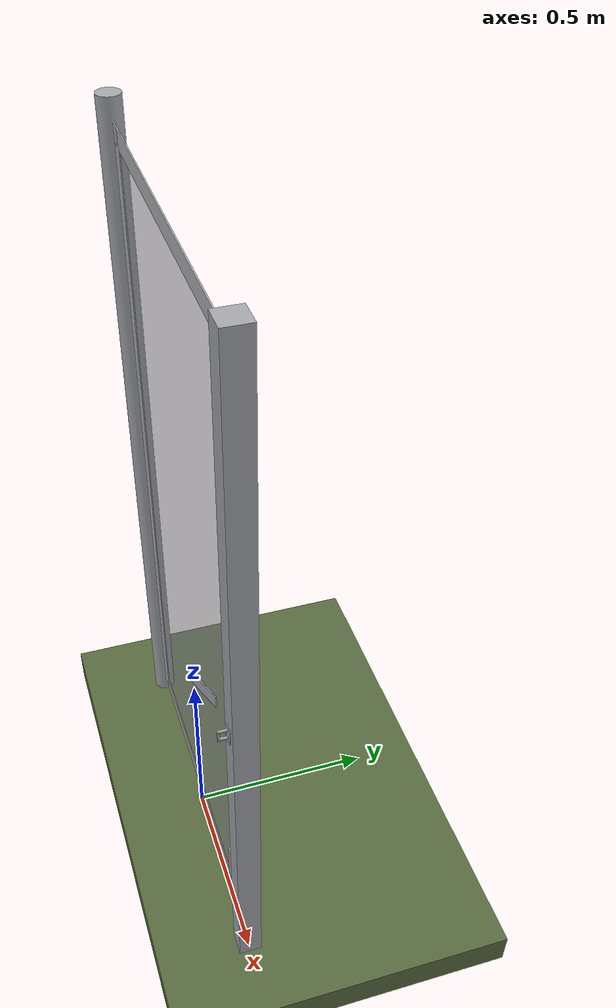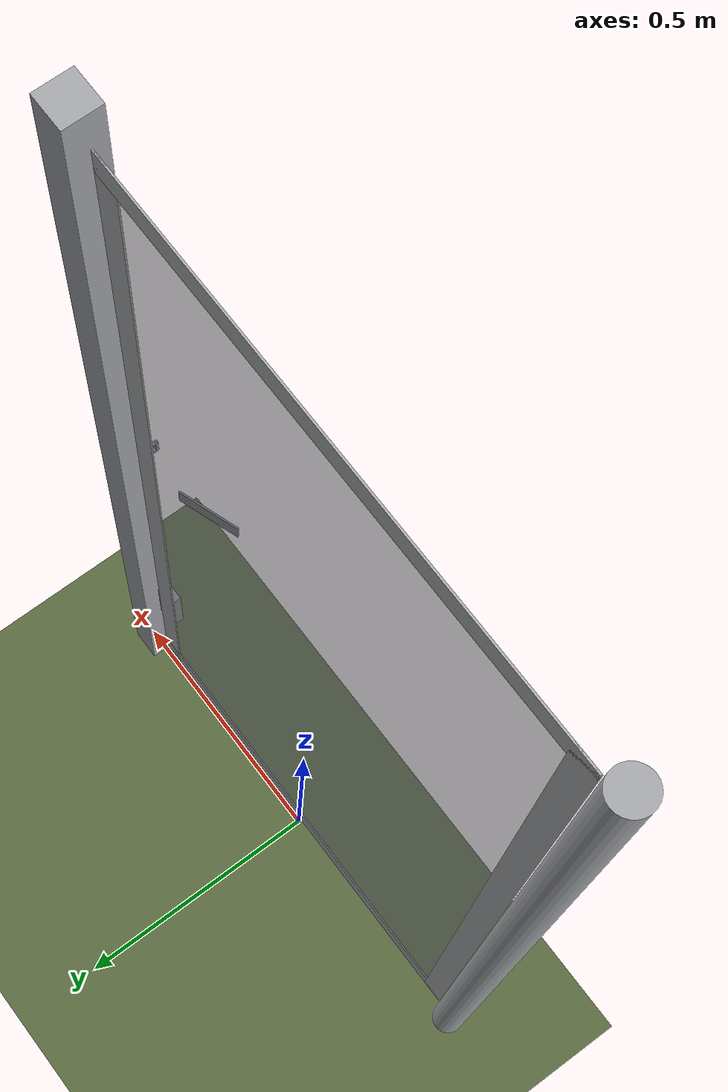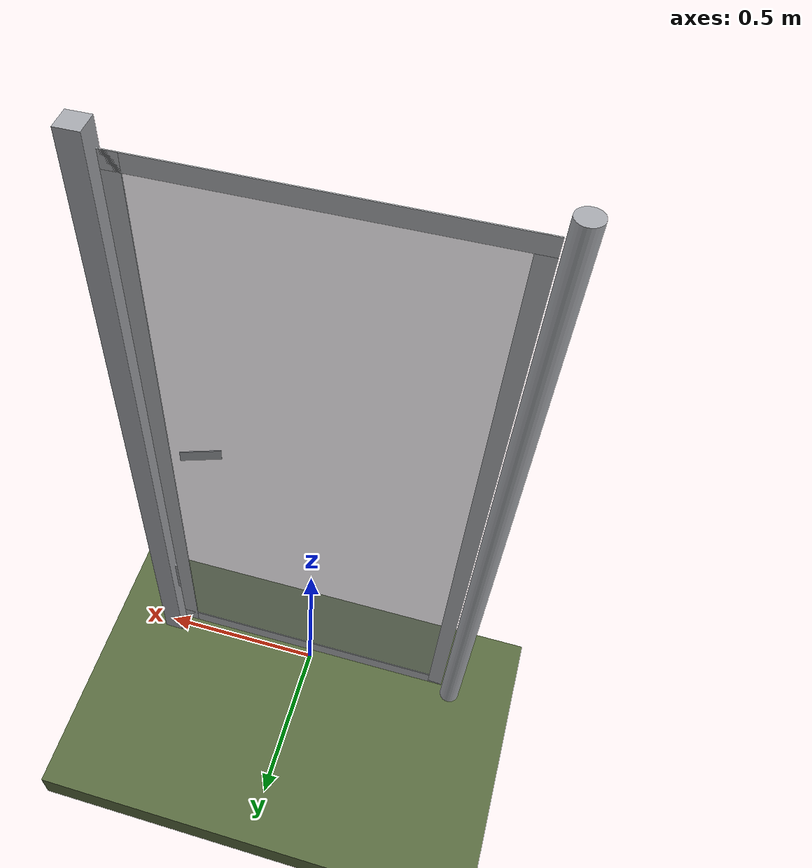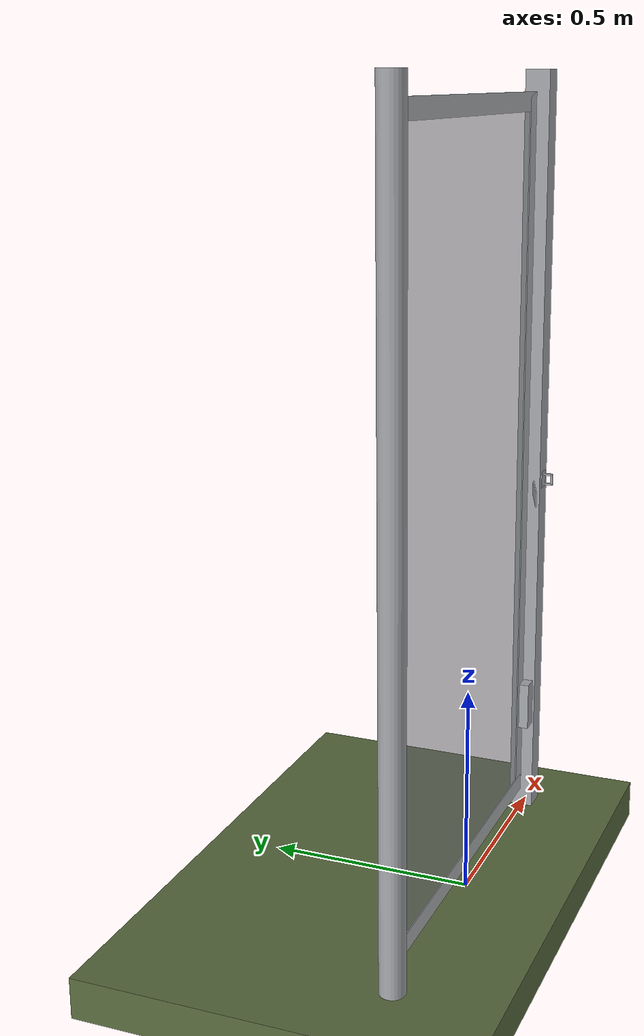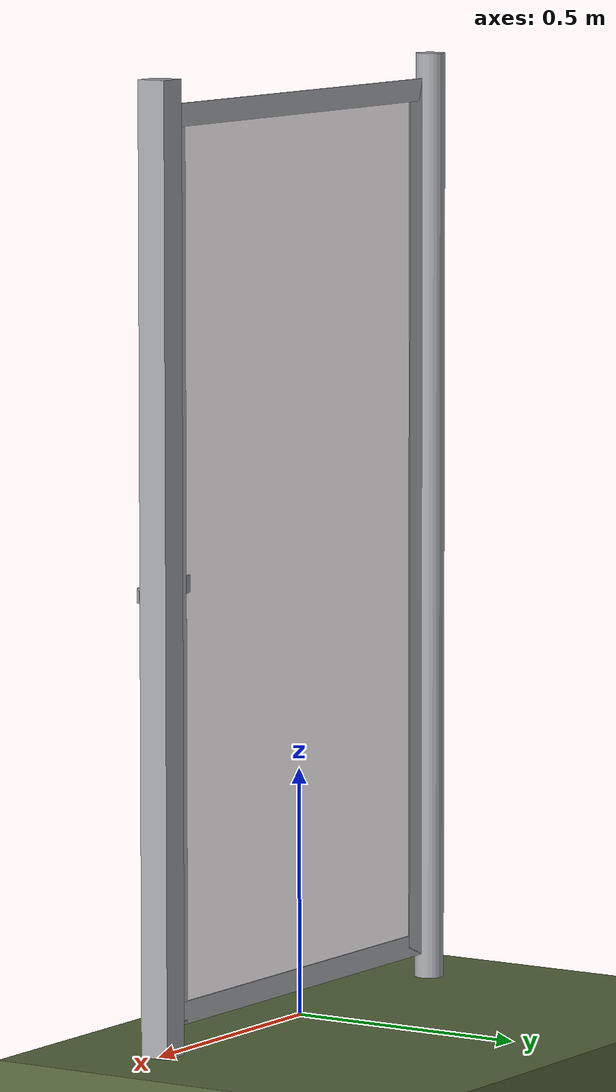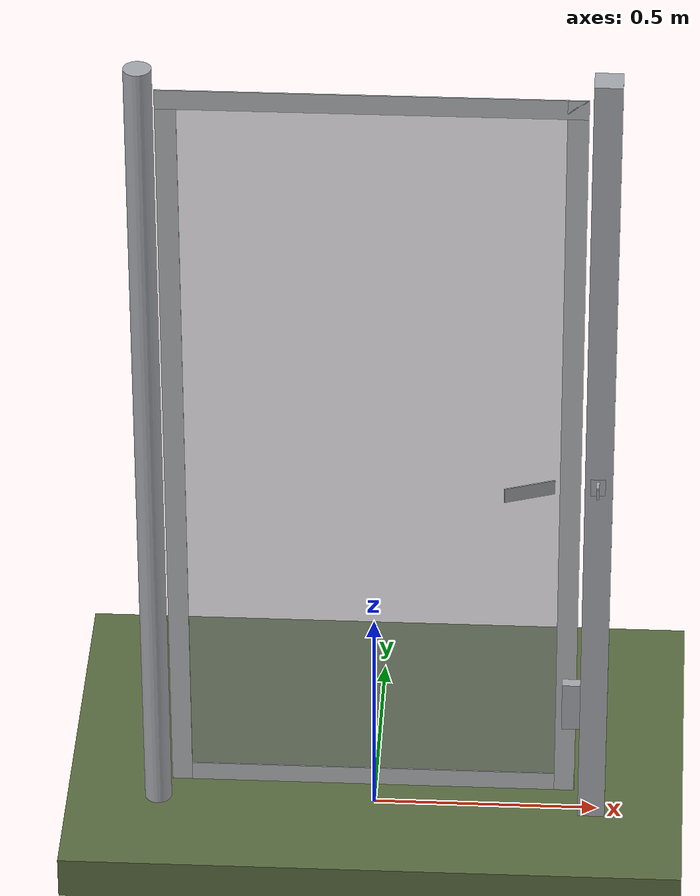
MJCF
<?xml version="1.0" ?>
<mujoco model="db0301_gate_swing_minimal">
  <compiler angle="radian" meshdir="../../hardware" texturedir="../../textures" autolimits="true" inertiafromgeom="false"/>
  <option timestep="0.002" integrator="implicitfast" cone="elliptic" impratio="10" noslip_iterations="3">
    <flag multiccd="enable"/>
  </option>
  <size memory="16M"/>
  <default>
    <geom condim="4" solref="0.005 1" solimp="0.95 0.99 0.001"/>
    <joint solreflimit="0.005 1" solimplimit="0.95 0.99 0.001"/>
    <tendon solreflimit="0.005 1"/>
    <equality solref="0.002 1"/>
  </default>
  <visual>
    <headlight ambient="0.4 0.4 0.4" diffuse="0.7 0.7 0.7" specular="0.2 0.2 0.2"/>
    <quality shadowsize="4096"/>
    <map znear="0.01" zfar="60"/>
  </visual>
  <asset>
    <material name="mat_floor" rgba="0.35 0.42 0.25 1" specular="0.2" shininess="0.15" reflectance="0"/>
    <material name="mat_wall" rgba="0.78 0.76 0.7 1" specular="0.2" shininess="0.1" reflectance="0"/>
    <material name="mat_leaf" rgba="0.7 0.71 0.72 1" specular="0.74" shininess="0.5" reflectance="0.36"/>
    <material name="mat_mesh_infill" rgba="0.6 0.62 0.64 0.55" specular="0.68" shininess="0.3" reflectance="0.1"/>
    <material name="mat_hinge" rgba="0.65 0.66 0.68 1" specular="0.74" shininess="0.5" reflectance="0.36"/>
    <material name="mat_op_steel_galvanized" rgba="0.65 0.66 0.68 1" specular="0.74" shininess="0.5" reflectance="0.36"/>
    <material name="mat_padlock" rgba="0.85 0.66 0.3 1" specular="0.8" shininess="0.75" reflectance="0.4"/>
    <material name="mat_frame" rgba="0.65 0.66 0.68 1" specular="0.74" shininess="0.5" reflectance="0.36"/>
    <material name="mat_fence_mesh" rgba="0.6 0.62 0.64 0.5" specular="0.68" shininess="0.3" reflectance="0.1"/>
    <texture name="skybox" type="skybox" builtin="gradient" rgb1="0.6 0.7 0.85" rgb2="0.9 0.92 0.95" width="256" height="256"/>
  </asset>
  <worldbody>
    <light name="sun" pos="1.5 -2.5 4" dir="-0.3 0.5 -0.8" directional="true" diffuse="0.8 0.8 0.8" specular="0.3 0.3 0.3" castshadow="true"/>
    <light name="fill" pos="-1.5 2.5 3" dir="0.3 -0.5 -0.7" directional="true" diffuse="0.35 0.35 0.4" castshadow="false"/>
    <camera name="robot_view" pos="0 -2.33125 1.56275" xyaxes="1 0 0 0 0.26963 0.962964" fovy="52"/>
    <camera name="far_view" pos="0 2.33125 1.56275" xyaxes="-1 0 0 0 -0.26963 0.962964" fovy="52"/>
    <camera name="iso" pos="1.77175 -1.95825 1.93575" xyaxes="0.741536 0.670913 0 -0.242917 0.268487 0.932151" fovy="46"/>
    <camera name="detail_handle" pos="0.666 -0.844 1.18" xyaxes="0.97561 0.219512 0 -0.070934 0.315262 0.94635" fovy="38"/>
    <geom name="floor" type="box" size="6 6 0.05" pos="0 0 -0.05" material="mat_floor" group="0" contype="1" conaffinity="1" friction="0.8 0.005 0.0001" density="2400"/>
    <geom name="leaf_staple_leg_n" type="box" size="0.003 0.0025 0.013" pos="0.484 -0.043 0.8875" quat="0.707107 0.707107 0 0" material="mat_op_steel_galvanized" group="0" contype="1" conaffinity="1" friction="0.6 0.005 0.0001" density="7800"/>
    <geom name="leaf_staple_leg_p" type="box" size="0.003 0.0025 0.013" pos="0.484 -0.043 0.9125" quat="0.707107 0.707107 0 0" material="mat_op_steel_galvanized" group="0" contype="1" conaffinity="1" friction="0.6 0.005 0.0001" density="7800"/>
    <geom name="leaf_staple_bridge" type="box" size="0.003 0.015 0.0025" pos="0.484 -0.0535 0.9" quat="0.707107 0.707107 0 0" material="mat_op_steel_galvanized" group="0" contype="1" conaffinity="1" friction="0.6 0.005 0.0001" density="7800"/>
    <geom name="leaf_staple_base" type="box" size="0.016 0.021 0.001" pos="0.484 -0.031 0.9" quat="0.707107 0.707107 0 0" material="mat_op_steel_galvanized" group="1" contype="0" conaffinity="0" density="7800"/>
    <geom name="post_hinge" type="cylinder" size="0.03 0.95" pos="-0.486 0 0.95" material="mat_frame" group="0" contype="1" conaffinity="1" friction="0.6 0.005 0.0001" density="800"/>
    <geom name="post_latch" type="box" size="0.03 0.03 0.95" pos="0.486 0 0.95" material="mat_frame" group="0" contype="1" conaffinity="1" friction="0.6 0.005 0.0001" density="800"/>
    <geom name="gate_stop" type="box" size="0.02 0.012 0.06" pos="0.436 -0.0135 0.3" material="mat_frame" group="0" contype="1" conaffinity="1" friction="0.6 0.005 0.0001" density="800"/>
    <site name="approach_point" pos="0 -1.5 0" quat="1 0 0 0" size="0.05" rgba="0.2 0.9 0.2 0.5" group="4"/>
    <site name="goal_point" pos="0 1.5 0" quat="1 0 0 0" size="0.05" rgba="0.2 0.9 0.2 0.5" group="4"/>
    <site name="door_plane_center" pos="0 0 0.91" quat="1 0 0 0" size="0.02" rgba="0.2 0.9 0.2 0.5" group="4"/>
    <body name="leaf" pos="-0.456 0 0">
      <inertial pos="0.453 0 0.95" mass="5.15026" quat="-0.5 0.5 0.5 0.5" diaginertia="0.347650194 1.390590449 1.738232917"/>
      <joint name="leaf_hinge" type="hinge" axis="0 0 1" pos="0.003 0.05 0" limited="true" range="0 1.745329" damping="0.263285" frictionloss="2.570028" armature="0.02"/>
      <geom name="leaf_slab_col" type="box" size="0.45 0.0015 0.9" pos="0.453 0 0.95" material="mat_leaf" group="3" contype="1" conaffinity="1" rgba="0.8 0.3 0.3 0.25" friction="0.45 0.005 0.0001" density="1"/>
      <geom name="leaf_rail_b" type="box" size="0.45 0.0015 0.0225" pos="0.453 0 0.0725" material="mat_leaf" group="1" contype="0" conaffinity="0" density="1"/>
      <geom name="leaf_rail_t" type="box" size="0.45 0.0015 0.0225" pos="0.453 0 1.8275" material="mat_leaf" group="1" contype="0" conaffinity="0" density="1"/>
      <geom name="leaf_stile_h" type="box" size="0.0225 0.0015 0.9" pos="0.0255 0 0.95" material="mat_leaf" group="1" contype="0" conaffinity="0" density="1"/>
      <geom name="leaf_stile_l" type="box" size="0.0225 0.0015 0.9" pos="0.8805 0 0.95" material="mat_leaf" group="1" contype="0" conaffinity="0" density="1"/>
      <geom name="leaf_mesh" type="box" size="0.405 0.0015 0.855" pos="0.453 0 0.95" material="mat_mesh_infill" group="1" contype="0" conaffinity="0" density="1"/>
      <site name="leaf_edge_mid" pos="0.903 0 0.9" quat="1 0 0 0" size="0.02" rgba="0.2 0.9 0.2 0.5" group="4"/>
      <body name="leaf_hasp" pos="0.848 -0.034 0.9">
        <inertial pos="-0.054209 -0.017681 0" mass="0.093366" quat="0.696818 -0.696818 -0.120185 0.120185" diaginertia="0.000009601 0.000101185 0.000110646"/>
        <joint name="leaf_hasp_hinge" type="hinge" axis="0 0 -1" limited="true" range="0 2.9" damping="0.02" frictionloss="0.05" armature="0.005" ref="2.8"/>
        <geom name="leaf_hasp_strap" type="box" size="0.057 0.0175 0.0015" pos="-0.054209 -0.017681 0" quat="0.120185 0.120185 -0.696818 -0.696818" material="mat_op_steel_galvanized" group="0" contype="1" conaffinity="1" friction="0.6 0.005 0.0001" density="7800"/>
        <site name="leaf_hasp_grip" pos="-0.091919 -0.022067 0" quat="0.169967 0 0 -0.98545" size="0.01" rgba="0.2 0.9 0.2 0.5" group="4"/>
      </body>
    </body>
  </worldbody>
  <sensor>
    <jointpos name="leaf_hinge_pos" joint="leaf_hinge"/>
    <jointvel name="leaf_hinge_vel" joint="leaf_hinge"/>
    <jointpos name="leaf_hasp_hinge_pos" joint="leaf_hasp_hinge"/>
    <jointvel name="leaf_hasp_hinge_vel" joint="leaf_hasp_hinge"/>
  </sensor>
</mujoco>
